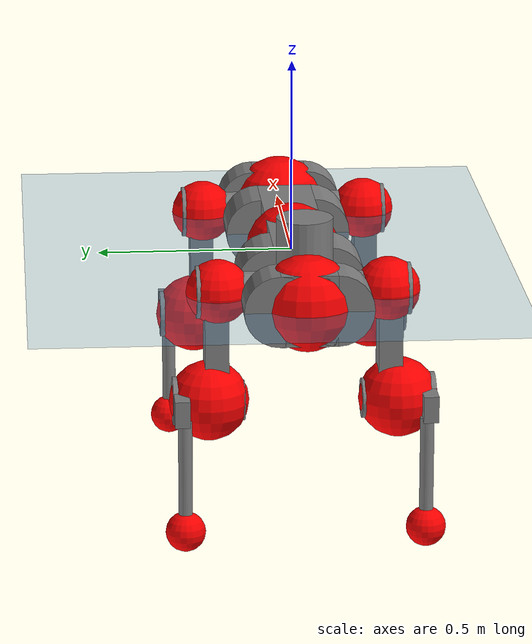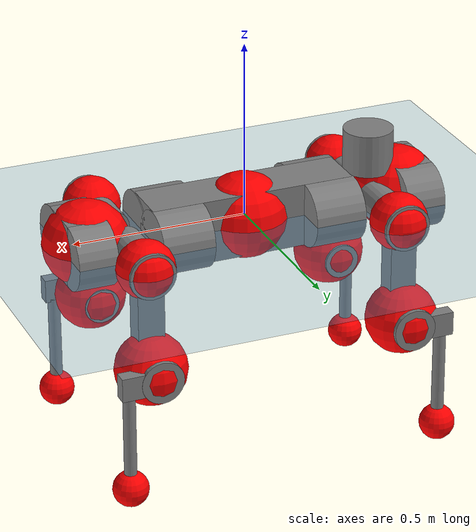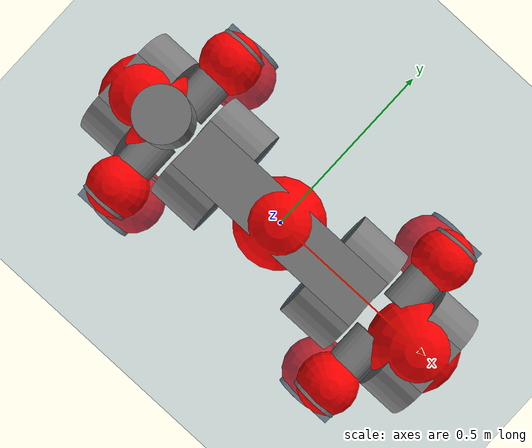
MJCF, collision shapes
<mujoco model="anymal_c">
  <compiler angle="radian" assetdir="assets" balanceinertia="true" inertiafromgeom="false"/>

  <option timestep="0.005" density="1.2" viscosity="2e-05"/>

  <size nkey="1"/>

  <visual>
    <quality shadowsize="8192"/>
    <map shadowclip="0.5"/>
  </visual>

  <default>
    <default class="/">
      <material specular="0" shininess="0.25"/>
      <geom contype="0" conaffinity="0" group="1" solref="-1000 -80"/>
      <site size="0.01 0.005 0.005" group="5"/>
      <general forcelimited="true" forcerange="-80 80" biastype="affine" gainprm="80" biasprm="0 -80 -2"/>
      <default class="anymal_c">
        <joint armature="0.01" damping="0.01" frictionloss="0.1"/>
        <default class="visual">
          <geom type="mesh" group="2"/>
          <default class="visual_zflip"/>
        </default>
        <default class="collision">
          <geom type="cylinder" group="3"/>
          <default class="foot">
            <geom size="0.03 0 0" type="sphere" condim="6" priority="1" friction="0.8 0.02 0.01" solimp="0.015 1 0.03"/>
          </default>
        </default>
      </default>
      <default class="reward_collision_sphere">
        <geom group="5" rgba="1 0 0 1"/>
      </default>
    </default>
  </default>

  <asset>
    <texture type="skybox" colorspace="auto" name="//unnamed_texture_0" builtin="gradient" rgb1="0.95 0.95 0.95" rgb2="0.95 0.95 0.95" width="100" height="600"/>
    <texture type="2d" colorspace="auto" name="texplane" builtin="checker" rgb1="0.345 0.575 0.748" rgb2="0.345 0.575 0.748" markrgb="1 1 1" width="512" height="512"/>
    <texture type="2d" colorspace="linear" name="base" file="base.png"/>
    <texture type="2d" colorspace="linear" name="top_shell" file="top_shell.png"/>
    <texture type="2d" colorspace="linear" name="bottom_shell" file="bottom_shell.png"/>
    <texture type="2d" colorspace="linear" name="remote" file="remote.png"/>
    <texture type="2d" colorspace="linear" name="hatch" file="hatch.png"/>
    <texture type="2d" colorspace="linear" name="handle" file="handle.png"/>
    <texture type="2d" colorspace="linear" name="face" file="face.png"/>
    <texture type="2d" colorspace="linear" name="battery" file="battery.png"/>
    <texture type="2d" colorspace="linear" name="lidar_cage" file="lidar_cage.png"/>
    <texture type="2d" colorspace="linear" name="depth_camera" file="depth_camera.png"/>
    <texture type="2d" colorspace="linear" name="wide_angle_camera" file="wide_angle_camera.png"/>
    <texture type="2d" colorspace="linear" name="lidar" file="lidar.png"/>
    <texture type="2d" colorspace="linear" name="drive" file="drive.png"/>
    <texture type="2d" colorspace="linear" name="hip_l" file="hip_l.png"/>
    <texture type="2d" colorspace="linear" name="shank_l" file="shank_l.png"/>
    <texture type="2d" colorspace="linear" name="foot" file="foot.png"/>
    <texture type="2d" colorspace="linear" name="thigh" file="thigh.png"/>
    <texture type="2d" colorspace="linear" name="shank_r" file="shank_r.png"/>
    <texture type="2d" colorspace="linear" name="hip_r" file="hip_r.png"/>
    <material name="MatPlane" class="/" texture="texplane" texuniform="true" texrepeat="2 2" specular="0.9" shininess="0.5"/>
    <material name="black_plastic" class="/" rgba="0.007 0.007 0.007 1"/>
    <material name="green" class="/" rgba="0.052 0.178 0.033 1"/>
    <material name="red" class="/" rgba="0.178 0.006 0.005 1"/>
    <material name="yellow" class="/" rgba="0.178 0.119 0.006 1"/>
    <material name="lwl" class="/" rgba="0.8 0.8 0.8 1"/>
    <material name="base" class="/" texture="base"/>
    <material name="top_shell" class="/" texture="top_shell"/>
    <material name="bottom_shell" class="/" texture="bottom_shell"/>
    <material name="hip_l" class="/" texture="hip_l"/>
    <material name="thigh" class="/" texture="thigh"/>
    <material name="shank_l" class="/" texture="shank_l"/>
    <material name="foot" class="/" texture="foot"/>
    <material name="hip_r" class="/" texture="hip_r"/>
    <material name="shank" class="/" texture="shank_r"/>
    <material name="hatch" class="/" texture="hatch"/>
    <material name="remote" class="/" texture="remote"/>
    <material name="handle" class="/" texture="handle"/>
    <material name="face" class="/" texture="face"/>
    <material name="depth_camera" class="/" texture="depth_camera"/>
    <material name="wide_angle_camera" class="/" texture="wide_angle_camera"/>
    <material name="battery" class="/" texture="battery"/>
    <material name="lidar_cage" class="/" texture="lidar_cage"/>
    <material name="lidar" class="/" texture="lidar"/>
    <material name="drive" class="/" texture="drive"/>
    <mesh name="base_0" class="/" file="base_0.obj"/>
    <mesh name="base_1" class="/" file="base_1.obj"/>
    <mesh name="base_2" class="/" file="base_2.obj"/>
    <mesh name="base_3" class="/" file="base_3.obj"/>
    <mesh name="base_4" class="/" file="base_4.obj"/>
    <mesh name="base_5" class="/" file="base_5.obj"/>
    <mesh name="top_shell" class="/" file="top_shell.obj"/>
    <mesh name="bottom_shell" class="/" file="bottom_shell.obj"/>
    <mesh name="remote" class="/" file="remote.obj"/>
    <mesh name="handle" class="/" file="handle.obj"/>
    <mesh name="face" class="/" file="face.obj"/>
    <mesh name="wide_angle_camera" class="/" file="wide_angle_camera.obj"/>
    <mesh name="depth_camera" class="/" file="depth_camera.obj"/>
    <mesh name="battery" class="/" file="battery.obj"/>
    <mesh name="lidar_cage" class="/" file="lidar_cage.obj"/>
    <mesh name="lidar" class="/" file="lidar.obj"/>
    <mesh name="drive" class="/" file="drive.obj"/>
    <mesh name="hip_l" class="/" file="hip_l.obj"/>
    <mesh name="thigh" class="/" file="thigh.obj"/>
    <mesh name="shank_l" class="/" file="shank_l.obj"/>
    <mesh name="foot" class="/" file="foot.obj"/>
    <mesh name="hip_r" class="/" file="hip_r.obj"/>
    <mesh name="hatch" class="/" file="hatch.obj"/>
    <mesh name="shank_r" class="/" file="shank_r.obj"/>
  </asset>

  <worldbody>
    <geom name="floor" class="/" size="100 100 0.125" type="plane" group="0" material="MatPlane"/>
    <light name="toplight_shadow" class="/" pos="0 0 5" dir="0.0990148 0.0990148 -0.990148" type="directional" ambient="0.04 0.04 0.04" diffuse="0.55 0.55 0.55" specular="0.12 0.12 0.12"/>
    <light name="toplight_fill" class="/" pos="0 0 5" dir="0.0990148 0.0990148 -0.990148" type="directional" castshadow="false" ambient="0.04 0.04 0.04" diffuse="0.3 0.3 0.3" specular="0.08 0.08 0.08"/>
    <body name="trunk" childclass="anymal_c" pos="-0.000133008 -0.00283969 -0.00118522" quat="0.999999 -0.000874946 0.00110835 0.000144434">
      <inertial pos="-0.000434393 -0.00124658 0.0520132" quat="0.507858 0.50499 0.494832 0.492145" mass="20.3299" diaginertia="0.703875 0.652701 0.228858"/>
      <joint name="//unnamed_joint_0" type="free" armature="0" damping="0" frictionloss="0"/>
      <geom name="//unnamed_geom_1" class="visual" material="green" mesh="base_0"/>
      <geom name="//unnamed_geom_2" class="visual" material="yellow" mesh="base_1"/>
      <geom name="//unnamed_geom_3" class="visual" material="red" mesh="base_2"/>
      <geom name="//unnamed_geom_4" class="visual" material="black_plastic" mesh="base_3"/>
      <geom name="//unnamed_geom_5" class="visual" material="lwl" mesh="base_4"/>
      <geom name="//unnamed_geom_6" class="visual" material="base" mesh="base_5"/>
      <geom name="trunk_1" class="collision" size="0.293787 0.0709141 0.0911753" type="box"/>
      <geom name="trunk_2" class="collision" size="0.0911753 0.0734467" pos="0.222955 0.0705188 0" quat="0.707107 0 0.707107 0"/>
      <geom name="trunk_3" class="collision" size="0.0911753 0.0734467" pos="-0.222955 0.0705188 0" quat="0.707107 0 0.707107 0"/>
      <geom name="trunk_4" class="collision" size="0.0911753 0.0734467" pos="0.222955 -0.0705188 0" quat="0.707107 0 0.707107 0"/>
      <geom name="trunk_5" class="collision" size="0.0911753 0.0734467" pos="-0.222955 -0.0705188 0" quat="0.707107 0 0.707107 0"/>
      <geom name="//unnamed_geom_12" class="visual" material="top_shell" mesh="top_shell"/>
      <geom name="//unnamed_geom_13" class="visual" material="bottom_shell" mesh="bottom_shell"/>
      <geom name="//unnamed_geom_14" class="visual" material="remote" mesh="remote"/>
      <geom name="//unnamed_geom_15" class="visual" material="handle" mesh="handle"/>
      <geom name="//unnamed_geom_16" class="visual" pos="0.424895 0 0" quat="1 0 0 0" material="face" mesh="face"/>
      <geom name="trunk_6" class="collision" size="0.0557182 0.0709141 0.0911753" pos="0.481275 0 0" type="box"/>
      <geom name="//unnamed_geom_18" class="collision" size="0.0911753 0.0557182" pos="0.481275 0.0705188 0" quat="0.707107 0 0.707107 0"/>
      <geom name="//unnamed_geom_19" class="collision" size="0.0911753 0.0557182" pos="0.481275 -0.0705188 0" quat="0.707107 0 0.707107 0"/>
      <geom name="//unnamed_geom_20" class="visual" pos="0.473227 0 -0.0292554" quat="0.965926 0 0.258819 0" material="depth_camera" mesh="depth_camera"/>
      <geom name="//unnamed_geom_21" class="visual" pos="0.525866 0 0.0150701" material="wide_angle_camera" mesh="wide_angle_camera"/>
      <geom name="//unnamed_geom_22" class="visual_zflip" pos="-0.424895 0 0" quat="0 0 0 1" material="face" mesh="face"/>
      <geom name="trunk_7" class="collision" size="0.0557182 0.0709141 0.0911753" pos="-0.481275 0 0" quat="0 0 0 1" type="box"/>
      <geom name="//unnamed_geom_24" class="collision" size="0.0911753 0.0557182" pos="-0.481275 -0.0705188 0" quat="0 -0.707107 0 0.707107"/>
      <geom name="//unnamed_geom_25" class="collision" size="0.0911753 0.0557182" pos="-0.481275 0.0705188 0" quat="0 -0.707107 0 0.707107"/>
      <geom name="//unnamed_geom_26" class="visual" pos="-0.473227 0 -0.0292554" quat="0 -0.258819 0 0.965926" material="depth_camera" mesh="depth_camera"/>
      <geom name="//unnamed_geom_27" class="visual_zflip" pos="-0.525866 0 0.0150701" quat="0 0 0 1" material="wide_angle_camera" mesh="wide_angle_camera"/>
      <geom name="//unnamed_geom_28" class="visual" material="battery" mesh="battery"/>
      <geom name="//unnamed_geom_29" class="visual" pos="0 0.0767941 0.029384" quat="0.683013 -0.183013 0.183013 0.683013" material="depth_camera" mesh="depth_camera"/>
      <geom name="//unnamed_geom_30" class="visual" pos="0 -0.0767941 0.029384" quat="0.683013 0.183013 0.183013 -0.683013" material="depth_camera" mesh="depth_camera"/>
      <geom name="//unnamed_geom_31" class="visual" pos="-0.373129 0 0.0739913" quat="1 0 0 0" material="lidar_cage" mesh="lidar_cage"/>
      <geom name="trunk_8" class="collision" size="0.0709141 0.0607835" pos="-0.373129 0 0.134392"/>
      <geom name="//unnamed_geom_33" class="visual" pos="-0.373129 -6.94117e-06 0.143151" quat="0.707107 0 0 -0.707107" material="lidar" mesh="lidar"/>
      <geom name="//unnamed_geom_34" class="visual" pos="0.307421 0.104771 1.25422e-11" quat="0.258819 0.965926 0 0" material="drive" mesh="drive"/>
      <geom name="//unnamed_geom_35" class="visual" pos="0.307421 -0.104771 -1.25422e-11" quat="0.258819 -0.965926 0 0" material="drive" mesh="drive"/>
      <geom name="//unnamed_geom_36" class="visual" pos="-0.307421 0.104771 -1.25422e-11" quat="0 0 0.965926 -0.258819" material="drive" mesh="drive"/>
      <geom name="//unnamed_geom_37" class="visual" pos="-0.307421 -0.104771 1.25422e-11" quat="0 0 -0.965926 -0.258819" material="drive" mesh="drive"/>
      <geom name="//unnamed_geom_38" class="visual" pos="0.118909 0 0.073488" quat="1 0 0 0" material="hatch" mesh="hatch"/>
      <geom name="//unnamed_geom_39" class="reward_collision_sphere" size="0.121567"/>
      <geom name="//unnamed_geom_40" class="reward_collision_sphere" size="0.121567" pos="0.461286 0 0"/>
      <geom name="//unnamed_geom_41" class="reward_collision_sphere" size="0.121567" pos="-0.461286 0 0"/>
      <site name="imu" pos="0.260164 0.00384673 0.0420706" size="0.0101306"/>
      <camera name="track" pos="0 -2.01482 0" quat="0.707107 0.707107 0 0" mode="trackcom"/>
      <camera name="ego_camera" pos="0.461286 0 -0.0402674" quat="-0.5 -0.5 0.5 0.5"/>
      <body name="LF_HIP" pos="0.306687 0.105375 0.00163782" quat="0.258815 0.965927 0.000603741 0.000227647">
        <inertial pos="0.0581222 -0.017726 -0.00776333" quat="-0.125439 0.70953 -0.136342 0.679884" mass="2.88169" diaginertia="0.00671033 0.00495367 0.00343539"/>
        <joint name="LF_HAA" pos="0 0 0" axis="0.999927 -0.000343053 -0.0120613" stiffness="0.00624407" range="-0.770661 0.495185" armature="0.0104774" damping="0.00591063" frictionloss="0.0991408"/>
        <geom name="//unnamed_geom_42" class="visual" pos="0 7.37804e-07 -1.21184e-07" quat="0.258819 -0.965926 0 0" material="hip_l" mesh="hip_l"/>
        <geom name="//unnamed_geom_43" class="visual" pos="0.0614023 -0.074169 -0.0428161" quat="0.183013 -0.683013 0.683013 0.183013" material="drive" mesh="drive"/>
        <geom name="//unnamed_geom_44" class="collision" size="0.0506529 0.0709141" pos="0.0614023 -0.0120484 -0.00695116" quat="-0.353553 -0.612372 0.612372 -0.353553"/>
        <body name="LF_THIGH" pos="0.0641698 -0.0706315 -0.0408878" quat="0.182837 -0.68291 0.683264 0.182632">
          <inertial pos="0.0315173 0.00109351 -0.246768" quat="0.993927 -0.00587167 -0.0709054 0.0839507" mass="3.3148" diaginertia="0.0334895 0.0317303 0.0043444"/>
          <joint name="LF_HFE" pos="0 0 0" axis="0.999897 0.0140676 -0.00278049" stiffness="0.0117455" range="-3.2006 3.10283" armature="0.0107069" damping="0.00401323" frictionloss="0.08769"/>
          <geom name="//unnamed_geom_45" class="visual" pos="0.000351518 5.5391e-07 0" quat="0.707107 0 0 -0.707107" material="thigh" mesh="thigh"/>
          <geom name="//unnamed_geom_46" class="collision" size="0.0658488 0.0405223" pos="0.0410032 0 0" quat="0.5 0.5 -0.5 -0.5"/>
          <geom name="//unnamed_geom_47" class="collision" size="0.0379897 0.0303918 0.143159" pos="0.0307524 0 -0.142259" quat="0.707107 0 0 -0.707107" type="box"/>
          <geom name="//unnamed_geom_48" class="visual" pos="0.102815 0 -0.286905" quat="1 0 0 0" material="drive" mesh="drive"/>
          <geom name="//unnamed_geom_49" class="collision" size="0.0506529 0.0709141" pos="0.0310599 0 -0.286905" quat="0.707107 0 0.707107 0"/>
          <geom name="//unnamed_geom_50" class="reward_collision_sphere" size="0.0810447" pos="0.025627 0 0"/>
          <body name="LF_SHANK" pos="0.102598 -0.000165017 -0.285446" quat="1 -0.000339981 0.000407 -0.000255398">
            <inertial pos="0.00344755 -0.0644628 -0.0838115" quat="0.993045 -0.116462 -0.000571659 -0.0172791" mass="0.601138" diaginertia="0.0110529 0.00945877 0.00113057"/>
            <joint name="LF_KFE" pos="0 0 0" axis="0.999991 0.00322973 -0.00290759" stiffness="0.00822879" range="-3.11916 3.19261" armature="0.00867668" damping="0" frictionloss="0.10816"/>
            <geom name="//unnamed_geom_51" class="visual" pos="0.000114622 0.000611173 0" quat="0.707107 0 0 -0.707107" material="shank_l" mesh="shank_l"/>
            <geom name="LF_kfe_act" class="collision" size="0.0607835 0.0202612" pos="0.0205016 0 0" quat="0.5 0.5 -0.5 -0.5"/>
            <geom name="//unnamed_geom_53" class="collision" size="0.0582499 0.0341907 0.0192481" pos="0.0205016 -0.0579252 0" quat="0.5 0.5 -0.5 -0.5" type="box"/>
            <geom name="//unnamed_geom_54" class="visual" pos="0.0133773 -0.0884049 -0.340229" quat="0.382683 0 0 -0.92388" material="foot" mesh="foot"/>
            <geom name="LF_calf" class="collision" size="0.0177285 0.143097" pos="0.0133773 -0.0886019 -0.170115" quat="0.707107 0 0 -0.707107"/>
            <geom name="LF_foot" class="foot" size="0.0283824" pos="0.0133773 -0.0886019 -0.317579" quat="0.707107 0 0 -0.707107"/>
            <geom name="//unnamed_geom_57" class="reward_collision_sphere" size="0.101306" pos="-0.051254 0 0"/>
            <geom name="//unnamed_geom_58" class="reward_collision_sphere" size="0.0506529" pos="0.0133773 -0.0886019 -0.317579"/>
            <site name="LF_foot" class="foot" pos="0.0133773 -0.0886019 -0.317579" quat="0.707107 0 0 -0.707107" size="0.0101306"/>
          </body>
        </body>
      </body>
      <body name="RF_HIP" pos="0.306474 -0.107738 0.000799337" quat="0.258615 -0.96598 0.00029577 0.000188198">
        <inertial pos="0.0590194 0.0179467 -0.0105523" quat="0.125906 0.67752 0.13032 0.712833" mass="2.82522" diaginertia="0.00639904 0.00511393 0.00346856"/>
        <joint name="RF_HAA" pos="0 0 0" axis="0.999879 0.00973224 0.0121345" range="-0.513037 0.768227" armature="0.008993" damping="0.00129442" frictionloss="0.10591"/>
        <geom name="//unnamed_geom_59" class="visual" pos="0 -7.37798e-07 -1.21183e-07" quat="0.258819 0.965926 0 0" material="hip_r" mesh="hip_r"/>
        <geom name="//unnamed_geom_60" class="visual" pos="0.0614023 0.074169 -0.0428161" quat="0.183013 0.683013 0.683013 -0.183013" material="drive" mesh="drive"/>
        <geom name="//unnamed_geom_61" class="collision" size="0.0506529 0.0709141" pos="0.0614023 0.0120484 -0.00695116" quat="-0.353553 0.612372 0.612372 0.353553"/>
        <body name="RF_THIGH" pos="0.059753 0.0720247 -0.0432885" quat="0.183134 0.683114 0.68287 -0.183045">
          <inertial pos="0.0342247 -0.00292934 -0.245442" quat="0.993207 -0.00101926 -0.0739108 0.0898627" mass="3.2335" diaginertia="0.0330432 0.0310317 0.0043276"/>
          <joint name="RF_HFE" pos="0 0 0" axis="0.999951 0.00833795 0.0053498" stiffness="0.00276305" range="-3.13824 3.17077" armature="0.0091593" damping="0.0214163" frictionloss="0.08705"/>
          <geom name="//unnamed_geom_62" class="visual" pos="0.000351518 5.5391e-07 0" quat="0.707107 0 0 -0.707107" material="thigh" mesh="thigh"/>
          <geom name="//unnamed_geom_63" class="collision" size="0.0658488 0.0405223" pos="0.0410032 0 0" quat="0.5 0.5 0.5 0.5"/>
          <geom name="//unnamed_geom_64" class="collision" size="0.0379897 0.0303918 0.143159" pos="0.0307524 0 -0.142259" quat="0.707107 0 0 0.707107" type="box"/>
          <geom name="//unnamed_geom_65" class="visual" pos="0.102815 0 -0.286905" quat="1 0 0 0" material="drive" mesh="drive"/>
          <geom name="//unnamed_geom_66" class="collision" size="0.0506529 0.0709141" pos="0.0310599 0 -0.286905" quat="0.707107 0 0.707107 0"/>
          <geom name="//unnamed_geom_67" class="reward_collision_sphere" size="0.0810447" pos="0.025627 0 0"/>
          <body name="RF_SHANK" pos="0.101411 0.00267376 -0.286081" quat="1 1.88436e-05 1.30876e-05 -1.99066e-05">
            <inertial pos="0.00294909 0.064551 -0.08182" quat="0.991947 0.122741 0.00460927 0.0309066" mass="0.61936" diaginertia="0.0113914 0.0100624 0.00113238"/>
            <joint name="RF_KFE" pos="0 0 0" axis="0.999995 0.00221203 0.00214038" range="-3.09602 3.151" armature="0.0104483" damping="0.00197235" frictionloss="0.0926139"/>
            <geom name="//unnamed_geom_68" class="visual" pos="0.000114622 -0.000611171 0" quat="0.707107 0 0 0.707107" material="shank" mesh="shank_r"/>
            <geom name="RF_kfe_act" class="collision" size="0.0607835 0.0202612" pos="0.0205016 0 0" quat="0.5 0.5 0.5 0.5"/>
            <geom name="//unnamed_geom_70" class="collision" size="0.0582499 0.0341907 0.0192481" pos="0.0205016 0.0579252 0" quat="0.5 0.5 0.5 0.5" type="box"/>
            <geom name="//unnamed_geom_71" class="visual" pos="0.0133773 0.0884049 -0.340229" quat="0.382683 0 0 0.92388" material="foot" mesh="foot"/>
            <geom name="RF_calf" class="collision" size="0.0177285 0.143097" pos="0.0133773 0.0886019 -0.170115" quat="0.707107 0 0 0.707107"/>
            <geom name="RF_foot" class="foot" size="0.0298731" pos="0.0133773 0.0886019 -0.317579" quat="0.707107 0 0 0.707107"/>
            <geom name="//unnamed_geom_74" class="reward_collision_sphere" size="0.101306" pos="-0.051254 0 0"/>
            <geom name="//unnamed_geom_75" class="reward_collision_sphere" size="0.0506529" pos="0.0133773 0.0886019 -0.317579"/>
            <site name="RF_foot" class="foot" pos="0.0133773 0.0886019 -0.317579" quat="0.707107 0 0 0.707107" size="0.0101306"/>
          </body>
        </body>
      </body>
      <body name="LH_HIP" pos="-0.307062 0.107844 0.00358796" quat="-0.000396141 1.40826e-05 0.966053 -0.258345">
        <inertial pos="0.0581244 0.0148825 -0.00567832" quat="0.134379 0.678199 0.128206 0.711022" mass="2.78953" diaginertia="0.00648517 0.00482835 0.0034343"/>
        <joint name="LH_HAA" pos="0 0 0" axis="0.999971 -0.000665075 0.00762528" stiffness="0.00751394" range="-0.444411 0.693145" armature="0.0100248" damping="0.0124634" frictionloss="0.115036"/>
        <geom name="//unnamed_geom_76" class="visual" pos="0 -7.37798e-07 -1.21183e-07" quat="-0.258819 -0.965926 0 0" material="hip_r" mesh="hip_r"/>
        <geom name="//unnamed_geom_77" class="visual" pos="0.0614023 0.074169 -0.0428161" quat="0.183013 0.683013 0.683013 -0.183013" material="drive" mesh="drive"/>
        <geom name="//unnamed_geom_78" class="collision" size="0.0506529 0.0709141" pos="0.0614023 0.0120484 -0.00695116" quat="-0.353553 0.612372 0.612372 0.353553"/>
        <body name="LH_THIGH" pos="0.0609229 0.0708005 -0.0421901" quat="0.182822 0.6836 0.68263 -0.182437">
          <inertial pos="0.0310038 0.000629174 -0.245552" quat="0.994213 -0.00833789 -0.070043 0.0810235" mass="3.15009" diaginertia="0.0332165 0.0321938 0.00445958"/>
          <joint name="LH_HFE" pos="0 0 0" axis="0.999991 0.00398276 0.00116518" range="-3.12566 3.1553" armature="0.0115476" damping="0.0235088" frictionloss="0.0876067"/>
          <geom name="//unnamed_geom_79" class="visual" pos="0.000351518 5.5391e-07 0" quat="0.707107 0 0 -0.707107" material="thigh" mesh="thigh"/>
          <geom name="//unnamed_geom_80" class="collision" size="0.0658488 0.0405223" pos="0.0410032 0 0" quat="0.5 0.5 -0.5 -0.5"/>
          <geom name="//unnamed_geom_81" class="collision" size="0.0379897 0.0303918 0.143159" pos="0.0307524 0 -0.142259" quat="0.707107 0 0 -0.707107" type="box"/>
          <geom name="//unnamed_geom_82" class="visual" pos="0.102815 0 -0.286905" quat="1 0 0 0" material="drive" mesh="drive"/>
          <geom name="//unnamed_geom_83" class="collision" size="0.0506529 0.0709141" pos="0.0310599 0 -0.286905" quat="0.707107 0 0.707107 0"/>
          <geom name="//unnamed_geom_84" class="reward_collision_sphere" size="0.0810447" pos="0.025627 0 0"/>
          <body name="LH_SHANK" pos="0.101036 0.00144526 -0.283981" quat="0.999999 -0.000245555 -0.000814629 -0.000776229">
            <inertial pos="0.00606275 0.0641437 -0.0800363" quat="0.99346 0.111154 -0.00206155 0.0260176" mass="0.599081" diaginertia="0.0110272 0.00919213 0.00111116"/>
            <joint name="LH_KFE" pos="0 0 0" axis="0.999996 -0.00283924 0.000666832" stiffness="0.00694337" range="-3.11573 3.1511" armature="0.0106557" damping="0.0214954" frictionloss="0.0869634"/>
            <geom name="//unnamed_geom_85" class="visual" pos="0.000114622 -0.000611171 0" quat="-0.707107 0 0 -0.707107" material="shank" mesh="shank_r"/>
            <geom name="LH_kfe_act" class="collision" size="0.0607835 0.0202612" pos="0.0205016 0 0" quat="0.5 0.5 -0.5 -0.5"/>
            <geom name="//unnamed_geom_87" class="collision" size="0.0582499 0.0341907 0.0192481" pos="0.0205016 0.0579252 0" quat="0.5 0.5 -0.5 -0.5" type="box"/>
            <geom name="//unnamed_geom_88" class="visual" pos="0.0133773 0.0884049 -0.340229" quat="-0.382683 0 0 -0.92388" material="foot" mesh="foot"/>
            <geom name="LH_calf" class="collision" size="0.0177285 0.143097" pos="0.0133773 0.0886019 -0.170115" quat="0.707107 0 0 -0.707107"/>
            <geom name="LH_foot" class="foot" size="0.030524" pos="0.0133773 0.0886019 -0.317579" quat="0.707107 0 0 -0.707107"/>
            <geom name="//unnamed_geom_91" class="reward_collision_sphere" size="0.101306" pos="-0.051254 0 0"/>
            <geom name="//unnamed_geom_92" class="reward_collision_sphere" size="0.0506529" pos="0.0133773 0.0886019 -0.317579"/>
            <site name="LH_foot" class="foot" pos="0.0133773 0.0886019 -0.317579" quat="0.707107 0 0 -0.707107" size="0.0101306"/>
          </body>
        </body>
      </body>
      <body name="RH_HIP" pos="-0.308535 -0.102805 0.000993358" quat="0.000360705 -5.28537e-05 -0.965847 -0.259112">
        <inertial pos="0.0572166 -0.0166409 -0.00782513" quat="-0.127973 0.71005 -0.137015 0.678733" mass="2.81071" diaginertia="0.00643078 0.00501494 0.00332131"/>
        <joint name="RH_HAA" pos="0 0 0" axis="0.999989 -0.00433185 0.00151288" stiffness="0.00836134" range="-0.724652 0.549113" armature="0.0111118" damping="0.0115962" frictionloss="0.115554"/>
        <geom name="//unnamed_geom_93" class="visual" pos="0 7.37804e-07 -1.21184e-07" quat="-0.258819 0.965926 0 0" material="hip_l" mesh="hip_l"/>
        <geom name="//unnamed_geom_94" class="visual" pos="0.0614023 -0.074169 -0.0428161" quat="-0.183013 0.683013 -0.683013 -0.183013" material="drive" mesh="drive"/>
        <geom name="//unnamed_geom_95" class="collision" size="0.0506529 0.0709141" pos="0.0614023 -0.0120484 -0.00695116" quat="0.353553 0.612372 -0.612372 0.353553"/>
        <body name="RH_THIGH" pos="0.0583927 -0.0699737 -0.0427849" quat="-0.182374 0.682689 -0.68352 -0.182967">
          <inertial pos="0.0323201 -0.00279135 -0.246178" quat="0.99325 -0.006051 -0.0779949 0.0856421" mass="3.24769" diaginertia="0.0347914 0.0307599 0.0041885"/>
          <joint name="RH_HFE" pos="0 0 0" axis="0.999986 0.00370796 -0.00386557" stiffness="0.00971584" range="-3.16119 3.15932" armature="0.00945181" damping="0.0204602" frictionloss="0.106491"/>
          <geom name="//unnamed_geom_96" class="visual" pos="0.000351518 5.5391e-07 0" quat="0.707107 0 0 -0.707107" material="thigh" mesh="thigh"/>
          <geom name="//unnamed_geom_97" class="collision" size="0.0658488 0.0405223" pos="0.0410032 0 0" quat="0.5 0.5 0.5 0.5"/>
          <geom name="//unnamed_geom_98" class="collision" size="0.0379897 0.0303918 0.143159" pos="0.0307524 0 -0.142259" quat="0.707107 0 0 0.707107" type="box"/>
          <geom name="//unnamed_geom_99" class="visual" pos="0.102815 0 -0.286905" quat="1 0 0 0" material="drive" mesh="drive"/>
          <geom name="//unnamed_geom_100" class="collision" size="0.0506529 0.0709141" pos="0.0310599 0 -0.286905" quat="0.707107 0 0.707107 0"/>
          <geom name="//unnamed_geom_101" class="reward_collision_sphere" size="0.0810447" pos="0.025627 0 0"/>
          <body name="RH_SHANK" pos="0.1051 0.00131989 -0.28543" quat="1 0.000108237 8.63306e-05 0.00019187">
            <inertial pos="0.00296032 -0.0620791 -0.0819045" quat="0.99293 -0.115827 8.16601e-05 -0.0259445" mass="0.632208" diaginertia="0.0116157 0.00986192 0.00116986"/>
            <joint name="RH_KFE" pos="0 0 0" axis="0.99996 0.00866707 -0.00227626" range="-3.09176 3.18313" armature="0.0105629" damping="0.0120365" frictionloss="0.114891"/>
            <geom name="//unnamed_geom_102" class="visual" pos="0.000114622 0.000611173 0" quat="0.707107 0 0 -0.707107" material="shank_l" mesh="shank_l"/>
            <geom name="RH_kfe_act" class="collision" size="0.0607835 0.0202612" pos="0.0205016 0 0" quat="0.5 0.5 0.5 0.5"/>
            <geom name="//unnamed_geom_104" class="collision" size="0.0582499 0.0341907 0.0192481" pos="0.0205016 -0.0579252 0" quat="0.5 0.5 0.5 0.5" type="box"/>
            <geom name="//unnamed_geom_105" class="visual" pos="0.0133773 -0.0884049 -0.340229" quat="0.382683 0 0 -0.92388" material="foot" mesh="foot"/>
            <geom name="RH_calf" class="collision" size="0.0177285 0.143097" pos="0.0133773 -0.0886019 -0.170115" quat="0.707107 0 0 0.707107"/>
            <geom name="RH_foot" class="foot" size="0.0306927" pos="0.0133773 -0.0886019 -0.317579" quat="0.707107 0 0 0.707107"/>
            <geom name="//unnamed_geom_108" class="reward_collision_sphere" size="0.101306" pos="-0.051254 0 0"/>
            <geom name="//unnamed_geom_109" class="reward_collision_sphere" size="0.0506529" pos="0.0133773 -0.0886019 -0.317579"/>
            <site name="RH_foot" class="foot" pos="0.0133773 -0.0886019 -0.317579" quat="0.707107 0 0 0.707107" size="0.0101306"/>
          </body>
        </body>
      </body>
    </body>
  </worldbody>

  <contact>
    <pair class="/" geom1="floor" geom2="LF_foot" name="//unnamed_contact_0"/>
    <pair class="/" geom1="floor" geom2="RF_foot" name="//unnamed_contact_1"/>
    <pair class="/" geom1="floor" geom2="LH_foot" name="//unnamed_contact_2"/>
    <pair class="/" geom1="floor" geom2="RH_foot" name="//unnamed_contact_3"/>
  </contact>

  <actuator>
    <general name="LF_HAA" class="/" joint="LF_HAA" forcerange="-89.7808 89.7808" gainprm="81.607" biasprm="0 -81.607 -2.1865"/>
    <general name="LF_HFE" class="/" joint="LF_HFE" forcerange="-80.6863 80.6863" gainprm="81.607" biasprm="0 -81.607 -2.1865"/>
    <general name="LF_KFE" class="/" joint="LF_KFE" forcerange="-77.7546 77.7546" gainprm="81.607" biasprm="0 -81.607 -2.1865"/>
    <general name="RF_HAA" class="/" joint="RF_HAA" forcerange="-73.8562 73.8562" gainprm="81.607" biasprm="0 -81.607 -2.1865"/>
    <general name="RF_HFE" class="/" joint="RF_HFE" forcerange="-80.9378 80.9378" gainprm="81.607" biasprm="0 -81.607 -2.1865"/>
    <general name="RF_KFE" class="/" joint="RF_KFE" forcerange="-72.8038 72.8038" gainprm="81.607" biasprm="0 -81.607 -2.1865"/>
    <general name="LH_HAA" class="/" joint="LH_HAA" forcerange="-78.8692 78.8692" gainprm="81.607" biasprm="0 -81.607 -2.1865"/>
    <general name="LH_HFE" class="/" joint="LH_HFE" forcerange="-80.8151 80.8151" gainprm="81.607" biasprm="0 -81.607 -2.1865"/>
    <general name="LH_KFE" class="/" joint="LH_KFE" forcerange="-86.3958 86.3958" gainprm="81.607" biasprm="0 -81.607 -2.1865"/>
    <general name="RH_HAA" class="/" joint="RH_HAA" forcerange="-74.6016 74.6016" gainprm="81.607" biasprm="0 -81.607 -2.1865"/>
    <general name="RH_HFE" class="/" joint="RH_HFE" forcerange="-87.1783 87.1783" gainprm="81.607" biasprm="0 -81.607 -2.1865"/>
    <general name="RH_KFE" class="/" joint="RH_KFE" forcerange="-87.5762 87.5762" gainprm="81.607" biasprm="0 -81.607 -2.1865"/>
  </actuator>

  <sensor>
    <gyro site="imu" name="imu_angular_velocity"/>
    <velocimeter site="imu" name="imu_linear_velocity"/>
    <framelinvel objtype="site" objname="LF_foot" name="LF_foot_global_linear_velocity"/>
    <framelinvel objtype="site" objname="RF_foot" name="RF_foot_global_linear_velocity"/>
    <framelinvel objtype="site" objname="LH_foot" name="LH_foot_global_linear_velocity"/>
    <framelinvel objtype="site" objname="RH_foot" name="RH_foot_global_linear_velocity"/>
  </sensor>

  <keyframe>
    <key name="home" qpos="0 0 0.55 1 0 0 0 0 0.4 -0.8 0 -0.4 0.8 0 -0.4 0.8 0 0.4 -0.8"/>
  </keyframe>
</mujoco>
